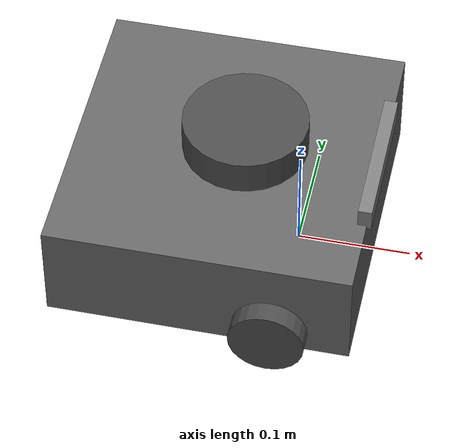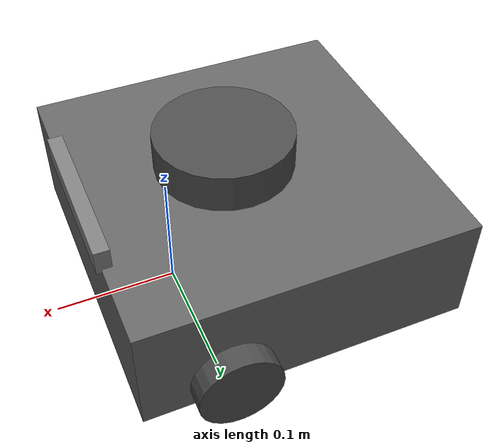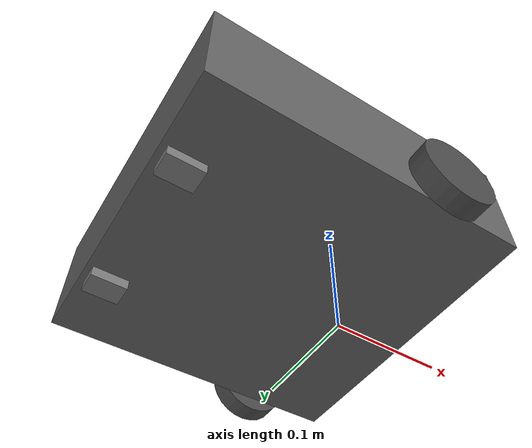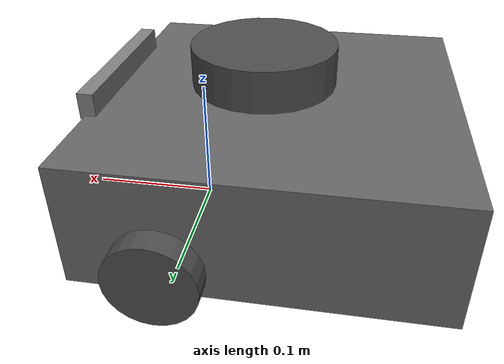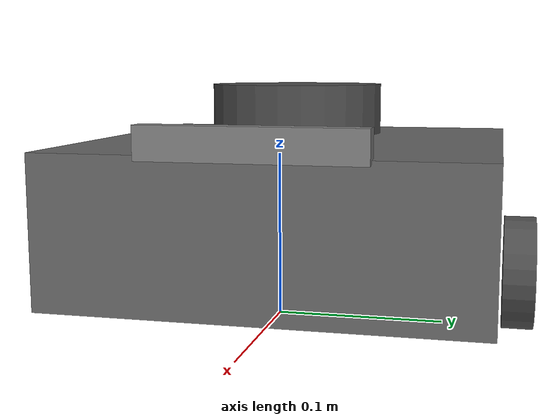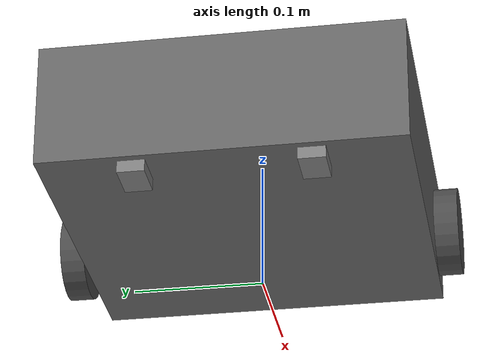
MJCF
<mujoco model="turtlebot3_waffle">
  <compiler angle="radian" />
  <worldbody>
    <body name="base_footprint">
      <body name="base_link" pos="0 0 0.01">
        <inertial pos="0 0 0" quat="0.602478 0.382697 -0.591491 0.375103" mass="1.37291" diaginertia="0.0146148 0.00872051 0.00859719" />
        <geom size="0.133 0.133 0.047" pos="-0.064 0 0.047" type="box" rgba="0.4 0.4 0.4 1" />
        <body name="wheel_left_link" pos="0 0.144 0.023" quat="0.707388 -0.706825 0 0">
          <inertial pos="0 0 0" quat="-0.000890159 0.706886 0.000889646 0.707326" mass="0.0284989" diaginertia="2.07126e-05 1.11924e-05 1.11756e-05" />
          <joint name="wheel_left_joint" pos="0 0 0" axis="0 0 1" />
          <geom size="0.033 0.009" type="cylinder" rgba="0.3 0.3 0.3 1" />
        </body>
        <body name="wheel_right_link" pos="0 -0.144 0.023" quat="0.707388 -0.706825 0 0">
          <inertial pos="0 0 0" quat="-0.000890159 0.706886 0.000889646 0.707326" mass="0.0284989" diaginertia="2.07126e-05 1.11924e-05 1.11756e-05" />
          <joint name="wheel_right_joint" pos="0 0 0" axis="0 0 1" />
          <geom size="0.033 0.009" type="cylinder" rgba="0.3 0.3 0.3 1" />
        </body>
        <body name="caster_back_right_link" pos="-0.177 -0.064 -0.004" quat="0.707388 -0.706825 0 0">
          <inertial pos="0 0 0" mass="0.005" diaginertia="0.001 0.001 0.001" />
          <geom size="0.015 0.0045 0.01" pos="0 0.001 0" type="box" />
        </body>
        <body name="caster_back_left_link" pos="-0.177 0.064 -0.004" quat="0.707388 -0.706825 0 0">
          <inertial pos="0 0 0" mass="0.005" diaginertia="0.001 0.001 0.001" />
          <geom size="0.015 0.0045 0.01" pos="0 0.001 0" type="box" />
        </body>
        <body name="imu_link" pos="0 0 0.068" />
        <body name="base_scan" pos="-0.064 0 0.122">
          <inertial pos="0 0 0" mass="0.114" diaginertia="0.001 0.001 0.001" />
          <geom size="0.055 0.01575" pos="0.015 0 -0.0065" type="cylinder" rgba="0.3 0.3 0.3 1" />
        </body>
        <body name="camera_link" pos="0.064 -0.065 0.094">
          <geom size="0.006 0.066 0.01" pos="0.003 0.065 0.007" type="box" />
          <body name="camera_rgb_frame" pos="0.005 0.018 0.013">
            <body name="camera_rgb_optical_frame" quat="0.500398 -0.5 0.499602 -0.5" />
          </body>
          <body name="camera_depth_frame" pos="0.005 0.028 0.013">
            <body name="camera_depth_optical_frame" quat="0.500398 -0.5 0.499602 -0.5" />
          </body>
        </body>
      </body>
    </body>
  </worldbody>
  <actuator>
    <velocity name="left_motor" joint="wheel_left_joint" ctrllimited="true" ctrlrange="-12 12" kv="0.75" />
    <velocity name="right_motor" joint="wheel_right_joint" ctrllimited="true" ctrlrange="-12 12" kv="0.75" />
  </actuator>
</mujoco>
